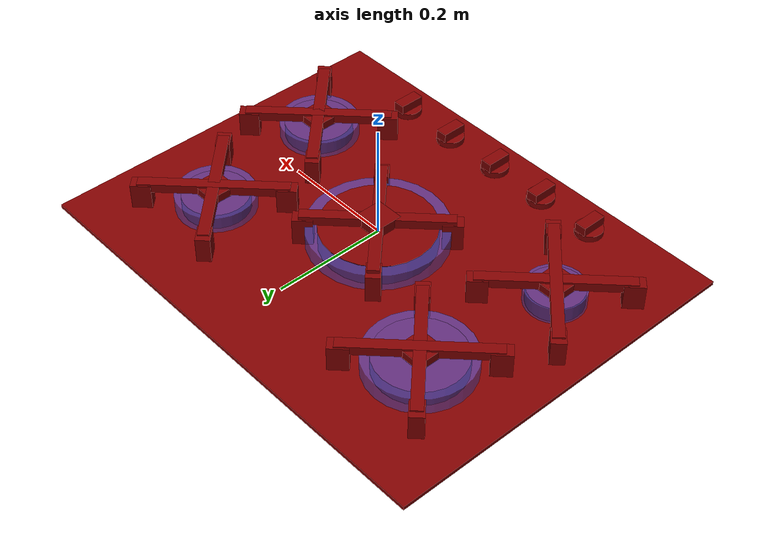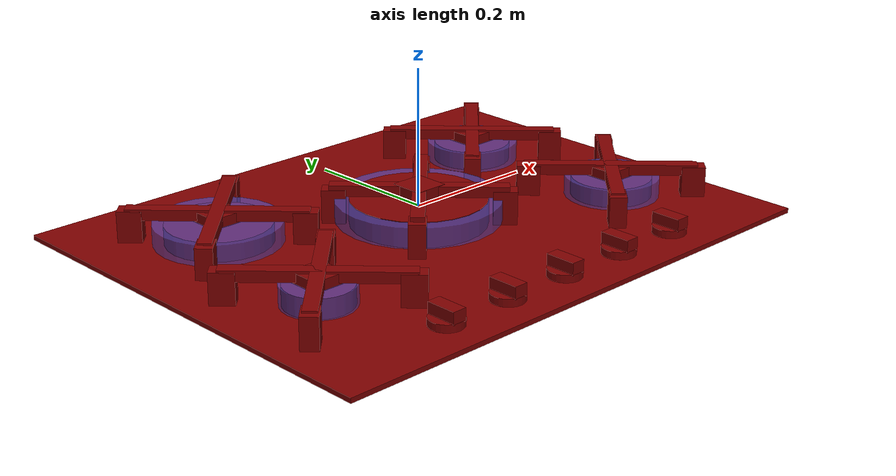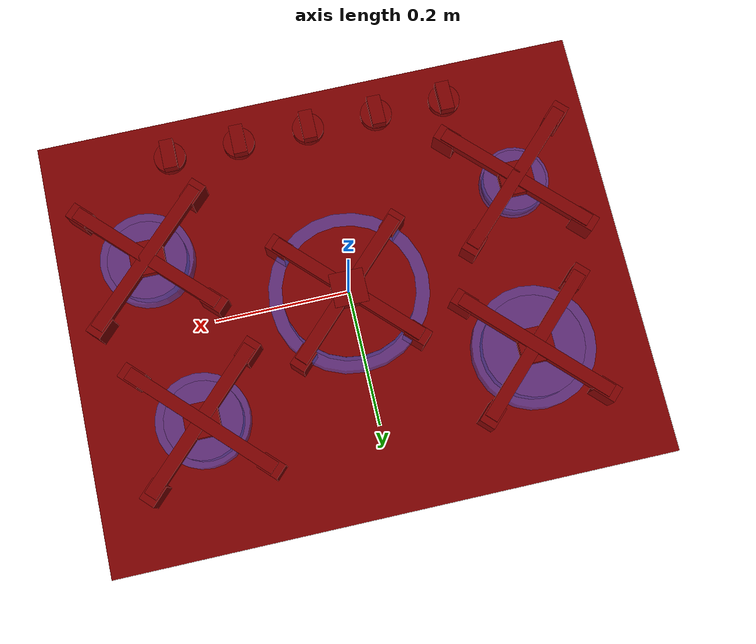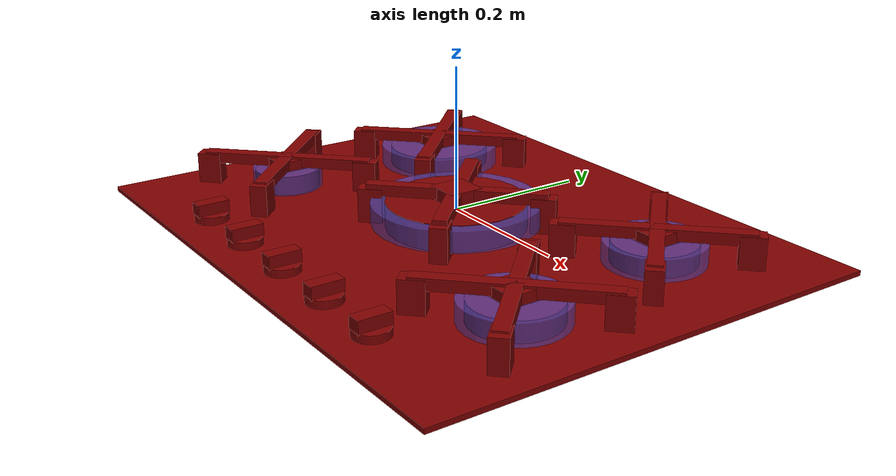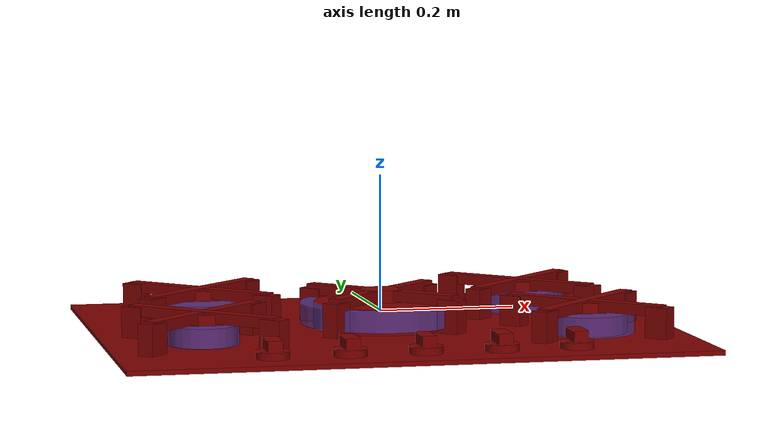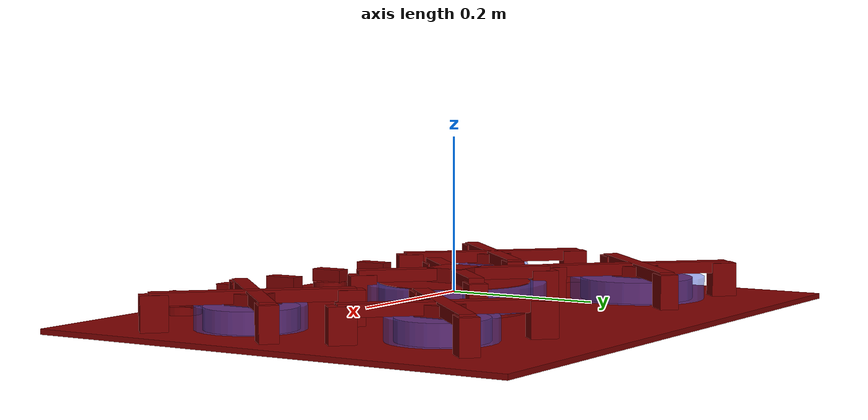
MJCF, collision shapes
<?xml version='1.0' encoding='UTF-8'?>
<mujoco model="model">
  <compiler angle="radian"/>
  <asset>
    <mesh file="visuals/knob_center.obj" name="knob_center_vis"/>
    <mesh file="visuals/knob_front_left.obj" name="knob_front_left_vis"/>
    <mesh file="visuals/knob_front_right.obj" name="knob_front_right_vis"/>
    <mesh file="visuals/knob_rear_left.obj" name="knob_rear_left_vis"/>
    <mesh file="visuals/knob_rear_right.obj" name="knob_rear_right_vis"/>
    <mesh file="visuals/Body001.obj" name="Body001_vis"/>
    <texture file="visuals/T_BC001.png" name="Body001_material" type="2d"/>
    <material name="Body001_material" rgba="1 1 1 1.0" texture="Body001_material" shininess="1" specular="1"/>
    <texture file="visuals/T_BC001.png" name="knob_center_material" type="2d"/>
    <material name="knob_center_material" rgba="1 1 1 1.0" texture="knob_center_material" shininess="0.4472135901451111" specular="0.3103448502657381"/>
    <texture file="visuals/T_BC001.png" name="knob_front_left_material" type="2d"/>
    <material name="knob_front_left_material" rgba="1 1 1 1.0" texture="knob_front_left_material" shininess="0.4472135901451111" specular="0.3103448502657381"/>
    <texture file="visuals/T_BC001.png" name="knob_front_right_material" type="2d"/>
    <material name="knob_front_right_material" rgba="1 1 1 1.0" texture="knob_front_right_material" shininess="0.4472135901451111" specular="0.3103448502657381"/>
    <texture file="visuals/T_BC001.png" name="knob_rear_left_material" type="2d"/>
    <material name="knob_rear_left_material" rgba="1 1 1 1.0" texture="knob_rear_left_material" shininess="0.4472135901451111" specular="0.3103448502657381"/>
    <texture file="visuals/T_BC001.png" name="knob_rear_right_material" type="2d"/>
    <material name="knob_rear_right_material" rgba="1 1 1 1.0" texture="knob_rear_right_material" shininess="0.4472135901451111" specular="0.3103448502657381"/>
  </asset>
  <default>
    <default class="visual">
      <geom conaffinity="0" contype="0" group="1" type="mesh"/>
    </default>
    <default class="collision">
      <geom group="0" rgba="0.5 0 0 0.5"/>
    </default>
    <default class="spawn">
      <geom group="0" rgba="1 1 1 0.5" contype="0" conaffinity="0"/>
      <site group="0" rgba="1 1 1 0.5"/>
    </default>
    <default class="region">
      <geom group="1" conaffinity="0" contype="0" rgba="0 1 0 0"/>
    </default>
  </default>
  <worldbody>
    <body>
      <body name="object">
        <site type="cylinder" rgba="0.3 0.4 1 0.5" size="0.11884433776140213 0.014999998733401299" pos="-0.000108 0.000192 -0.001920" name="burner_on_center"/>
        <site type="cylinder" rgba="0.3 0.4 1 0.5" size="0.09062150120735168 0.014999999664723873" pos="-0.245820 0.137891 -0.009257" name="burner_on_rear_left"/>
        <site type="cylinder" rgba="0.3 0.4 1 0.5" size="0.0512746162712574 0.014999999664723873" pos="-0.281406 -0.113703 -0.009257" name="burner_on_front_left"/>
        <site type="cylinder" rgba="0.3 0.4 1 0.5" size="0.06892839819192886 0.014999998733401299" pos="0.246604 0.137891 -0.009257" name="burner_on_rear_right"/>
        <site type="cylinder" rgba="0.3 0.4 1 0.5" size="0.0695662572979927 0.015000002458691597" pos="0.281586 -0.114855 -0.009257" name="burner_on_front_right"/>
        <geom mesh="Body001_vis" type="mesh" solimp="0.998 0.998 0.001" solref="0.001 1" density="100" friction="0.95 0.3 0.1" class="visual" material="Body001_material"/>
        <geom class="collision" type="box" pos="0.000000 -0.000000 -0.027369" size="0.41916248202323914 0.32970917224884033 0.003517111763358116" quat="1.0 0.0 0.0 0.0"/>
        <geom class="collision" type="cylinder" pos="0.000000 -0.000000 -0.006445" size="0.09859951585531235 0.020475422963500023" quat="1.0 0.0 0.0 0.0"/>
        <geom class="collision" type="cylinder" pos="-0.245617 0.136775 -0.011650" size="0.07574909925460815 0.015730246901512146" quat="1.0 0.0 0.0 0.0"/>
        <geom class="collision" type="cylinder" pos="-0.281561 -0.114144 -0.011650" size="0.047624148428440094 0.015730246901512146" quat="1.0 0.0 0.0 0.0"/>
        <geom class="collision" type="cylinder" pos="0.281796 -0.113452 -0.011650" size="0.05951455235481262 0.015730246901512146" quat="1.0 0.0 0.0 0.0"/>
        <geom class="collision" type="cylinder" pos="0.245851 0.138157 -0.011650" size="0.05783192068338394 0.015730246901512146" quat="1.0 0.0 0.0 0.0"/>
        <geom class="collision" type="box" pos="-0.281732 -0.113322 0.012730" size="0.025316525250673294 0.025316525250673294 0.007546335458755493" quat="1.0 0.0 0.0 0.0"/>
        <geom class="collision" type="box" pos="-0.365493 -0.028240 -0.002535" size="0.012155688367784023 0.01709933578968048 0.023591298609972" quat="0.9238795042037964 0.0 0.0 0.3826834559440613"/>
        <geom class="collision" type="box" pos="-0.280757 -0.112976 0.015686" size="0.00986664928495884 0.12632058560848236 0.007891014218330383" quat="0.9238795042037964 0.0 0.0 0.3826834559440613"/>
        <geom class="collision" type="box" pos="-0.195710 -0.198023 -0.002535" size="0.012155688367784023 0.01709933578968048 0.023591298609972" quat="0.9238795042037964 0.0 0.0 0.3826834559440613"/>
        <geom class="collision" type="box" pos="-0.196022 -0.028241 -0.002535" size="0.012155688367784023 0.01709933578968048 0.023591298609972" quat="0.9238795042037964 0.0 -0.0 -0.3826834559440613"/>
        <geom class="collision" type="box" pos="-0.280757 -0.112976 0.015686" size="0.00986664928495884 0.12632058560848236 0.007891014218330383" quat="0.9238795042037964 0.0 -0.0 -0.3826834559440613"/>
        <geom class="collision" type="box" pos="-0.365804 -0.198023 -0.002535" size="0.012155688367784023 0.01709933578968048 0.023591298609972" quat="0.9238795042037964 0.0 -0.0 -0.3826834559440613"/>
        <geom class="collision" type="box" pos="-0.246471 0.138079 0.012730" size="0.02531653828918934 0.02531653828918934 0.007546335458755493" quat="1.0 0.0 0.0 0.0"/>
        <geom class="collision" type="box" pos="-0.330231 0.223160 -0.002535" size="0.012155688367784023 0.01709933578968048 0.023591298609972" quat="0.9238795042037964 0.0 0.0 0.3826834559440613"/>
        <geom class="collision" type="box" pos="-0.245496 0.138425 0.015686" size="0.00986664928495884 0.12632058560848236 0.007891014218330383" quat="0.9238795042037964 0.0 0.0 0.3826834559440613"/>
        <geom class="collision" type="box" pos="-0.160448 0.053377 -0.002535" size="0.012155688367784023 0.01709933578968048 0.023591298609972" quat="0.9238795042037964 0.0 0.0 0.3826834559440613"/>
        <geom class="collision" type="box" pos="-0.160760 0.223160 -0.002535" size="0.012155688367784023 0.01709933578968048 0.023591298609972" quat="0.9238795042037964 0.0 -0.0 -0.3826834559440613"/>
        <geom class="collision" type="box" pos="-0.245496 0.138425 0.015686" size="0.00986664928495884 0.12632058560848236 0.007891014218330383" quat="0.9238795042037964 0.0 -0.0 -0.3826834559440613"/>
        <geom class="collision" type="box" pos="-0.330543 0.053377 -0.002535" size="0.012155688367784023 0.01709933578968048 0.023591298609972" quat="0.9238795042037964 0.0 -0.0 -0.3826834559440613"/>
        <geom class="collision" type="box" pos="0.246536 0.139385 0.012730" size="0.025316549465060234 0.025316549465060234 0.007546335458755493" quat="1.0 0.0 0.0 0.0"/>
        <geom class="collision" type="box" pos="0.162776 0.224466 -0.002535" size="0.012155688367784023 0.01709933578968048 0.023591298609972" quat="0.9238795042037964 0.0 0.0 0.3826834559440613"/>
        <geom class="collision" type="box" pos="0.247511 0.139731 0.015686" size="0.00986664928495884 0.12632058560848236 0.007891014218330383" quat="0.9238795042037964 0.0 0.0 0.3826834559440613"/>
        <geom class="collision" type="box" pos="0.332559 0.054683 -0.002535" size="0.012155688367784023 0.01709933578968048 0.023591298609972" quat="0.9238795042037964 0.0 0.0 0.3826834559440613"/>
        <geom class="collision" type="box" pos="0.332247 0.224466 -0.002535" size="0.012155688367784023 0.01709933578968048 0.023591298609972" quat="0.9238795042037964 0.0 -0.0 -0.3826834559440613"/>
        <geom class="collision" type="box" pos="0.247511 0.139731 0.015686" size="0.00986664928495884 0.12632058560848236 0.007891014218330383" quat="0.9238795042037964 0.0 -0.0 -0.3826834559440613"/>
        <geom class="collision" type="box" pos="0.162464 0.054683 -0.002535" size="0.012155688367784023 0.01709933578968048 0.023591298609972" quat="0.9238795042037964 0.0 -0.0 -0.3826834559440613"/>
        <geom class="collision" type="box" pos="0.279185 -0.112669 0.012730" size="0.02531656250357628 0.02531656250357628 0.007546335458755493" quat="1.0 0.0 0.0 0.0"/>
        <geom class="collision" type="box" pos="0.195425 -0.027587 -0.002535" size="0.012155688367784023 0.01709933578968048 0.023591298609972" quat="0.9238795042037964 0.0 0.0 0.3826834559440613"/>
        <geom class="collision" type="box" pos="0.280161 -0.112323 0.015686" size="0.00986664928495884 0.12632058560848236 0.007891014218330383" quat="0.9238795042037964 0.0 0.0 0.3826834559440613"/>
        <geom class="collision" type="box" pos="0.365208 -0.197370 -0.002535" size="0.012155688367784023 0.01709933578968048 0.023591298609972" quat="0.9238795042037964 0.0 0.0 0.3826834559440613"/>
        <geom class="collision" type="box" pos="0.364896 -0.027588 -0.002535" size="0.012155688367784023 0.01709933578968048 0.023591298609972" quat="0.9238795042037964 0.0 -0.0 -0.3826834559440613"/>
        <geom class="collision" type="box" pos="0.280161 -0.112323 0.015686" size="0.00986664928495884 0.12632058560848236 0.007891014218330383" quat="0.9238795042037964 0.0 -0.0 -0.3826834559440613"/>
        <geom class="collision" type="box" pos="0.195113 -0.197370 -0.002535" size="0.012155688367784023 0.01709933578968048 0.023591298609972" quat="0.9238795042037964 0.0 -0.0 -0.3826834559440613"/>
        <geom class="collision" type="box" pos="0.000359 -0.000355 0.020919" size="0.025316646322607994 0.025316646322607994 0.01155177690088749" quat="1.0 0.0 0.0 0.0"/>
        <geom class="collision" type="box" pos="-0.083401 0.084727 -0.000769" size="0.012155688367784023 0.01709933392703533 0.026065126061439514" quat="0.9238795042037964 0.0 0.0 0.3826834559440613"/>
        <geom class="collision" type="box" pos="0.001334 -0.000009 0.023875" size="0.00986664928495884 0.12632058560848236 0.007891014218330383" quat="0.9238795042037964 0.0 0.0 0.3826834559440613"/>
        <geom class="collision" type="box" pos="0.086382 -0.085056 -0.000769" size="0.012155688367784023 0.01709933392703533 0.026065126061439514" quat="0.9238795042037964 0.0 0.0 0.3826834559440613"/>
        <geom class="collision" type="box" pos="0.086070 0.084727 -0.000769" size="0.012155688367784023 0.01709933392703533 0.026065126061439514" quat="0.9238795042037964 0.0 -0.0 -0.3826834559440613"/>
        <geom class="collision" type="box" pos="0.001334 -0.000009 0.023875" size="0.00986664928495884 0.12632058560848236 0.007891014218330383" quat="0.9238795042037964 0.0 -0.0 -0.3826834559440613"/>
        <geom class="collision" type="box" pos="-0.083713 -0.085056 -0.000769" size="0.012155688367784023 0.01709933392703533 0.026065126061439514" quat="0.9238795042037964 0.0 -0.0 -0.3826834559440613"/>
        <body name="knob_center">
          <joint axis="0.0 0.0 1.0" pos="0.004396 -0.269576 -0.010873" limited="true" name="knob_center_joint" range="0.0 3.141592653589793" type="hinge" damping="0.05" armature="0.001" springref="-0.01"/>
          <geom mesh="knob_center_vis" type="mesh" solimp="0.998 0.998 0.001" solref="0.001 1" density="100" friction="0.95 0.3 0.1" class="visual" material="knob_center_material"/>
          <geom class="collision" type="cylinder" pos="0.004451 -0.269745 -0.017470" size="0.024202115833759308 0.005484013818204403" quat="1.0 0.0 0.0 0.0"/>
          <geom class="collision" type="box" pos="0.004451 -0.269745 -0.004475" size="0.010361538268625736 0.022899523377418518 0.008968896232545376" quat="1.0 0.0 0.0 0.0"/>
        </body>
        <body name="knob_front_left">
          <joint axis="0.0 0.0 1.0" pos="-0.211133 -0.269576 -0.010873" limited="true" name="knob_front_left_joint" range="0.0 3.141592653589793" type="hinge" damping="0.05" armature="0.001" springref="-0.01"/>
          <geom mesh="knob_front_left_vis" type="mesh" solimp="0.998 0.998 0.001" solref="0.001 1" density="100" friction="0.95 0.3 0.1" class="visual" material="knob_front_left_material"/>
          <geom class="collision" type="cylinder" pos="-0.210809 -0.269345 -0.017470" size="0.024202115833759308 0.005484013818204403" quat="1.0 0.0 0.0 0.0"/>
          <geom class="collision" type="box" pos="-0.210809 -0.269345 -0.004475" size="0.010361538268625736 0.022899523377418518 0.008968896232545376" quat="1.0 0.0 0.0 0.0"/>
        </body>
        <body name="knob_front_right">
          <joint axis="0.0 0.0 1.0" pos="0.221114 -0.269576 -0.010873" limited="true" name="knob_front_right_joint" range="0.0 3.141592653589793" type="hinge" damping="0.05" armature="0.001" springref="-0.01"/>
          <geom mesh="knob_front_right_vis" type="mesh" solimp="0.998 0.998 0.001" solref="0.001 1" density="100" friction="0.95 0.3 0.1" class="visual" material="knob_front_right_material"/>
          <geom class="collision" type="box" pos="0.221040 -0.269717 -0.004475" size="0.010361538268625736 0.022899523377418518 0.008968896232545376" quat="1.0 0.0 0.0 0.0"/>
          <geom class="collision" type="cylinder" pos="0.221040 -0.269717 -0.017470" size="0.024202115833759308 0.005484013818204403" quat="1.0 0.0 0.0 0.0"/>
        </body>
        <body name="knob_rear_left">
          <joint axis="0.0 0.0 1.0" pos="-0.103036 -0.269576 -0.010873" limited="true" name="knob_rear_left_joint" range="0.0 3.141592653589793" type="hinge" damping="0.05" armature="0.001" springref="-0.01"/>
          <geom mesh="knob_rear_left_vis" type="mesh" solimp="0.998 0.998 0.001" solref="0.001 1" density="100" friction="0.95 0.3 0.1" class="visual" material="knob_rear_left_material"/>
          <geom class="collision" type="box" pos="-0.102895 -0.269691 -0.004475" size="0.010361538268625736 0.022899523377418518 0.008968896232545376" quat="1.0 0.0 0.0 0.0"/>
          <geom class="collision" type="cylinder" pos="-0.102895 -0.269691 -0.017470" size="0.024202115833759308 0.005484013818204403" quat="1.0 0.0 0.0 0.0"/>
        </body>
        <body name="knob_rear_right">
          <joint axis="0.0 0.0 1.0" pos="0.113101 -0.269576 -0.010873" limited="true" name="knob_rear_right_joint" range="0.0 3.141592653589793" type="hinge" damping="0.05" armature="0.001" springref="-0.01"/>
          <geom mesh="knob_rear_right_vis" type="mesh" solimp="0.998 0.998 0.001" solref="0.001 1" density="100" friction="0.95 0.3 0.1" class="visual" material="knob_rear_right_material"/>
          <geom class="collision" type="cylinder" pos="0.113114 -0.269717 -0.017470" size="0.024202115833759308 0.005484013818204403" quat="1.0 0.0 0.0 0.0"/>
          <geom class="collision" type="box" pos="0.113114 -0.269717 -0.004475" size="0.010361538268625736 0.022899523377418518 0.008968896232545376" quat="1.0 0.0 0.0 0.0"/>
        </body>
        <geom class="region" name="reg_main" type="box" pos="0.0 0.00033400000000000096 -0.0273375" size="0.419192 0.329558 0.003206500000000001"/>
      </body>
    </body>
  </worldbody>
  <actuator>
    <motor name="knob_center_joint_actuator" joint="knob_center_joint" gear="10"/>
    <motor name="knob_front_left_joint_actuator" joint="knob_front_left_joint" gear="10"/>
    <motor name="knob_front_right_joint_actuator" joint="knob_front_right_joint" gear="10"/>
    <motor name="knob_rear_left_joint_actuator" joint="knob_rear_left_joint" gear="10"/>
    <motor name="knob_rear_right_joint_actuator" joint="knob_rear_right_joint" gear="10"/>
  </actuator>
</mujoco>
